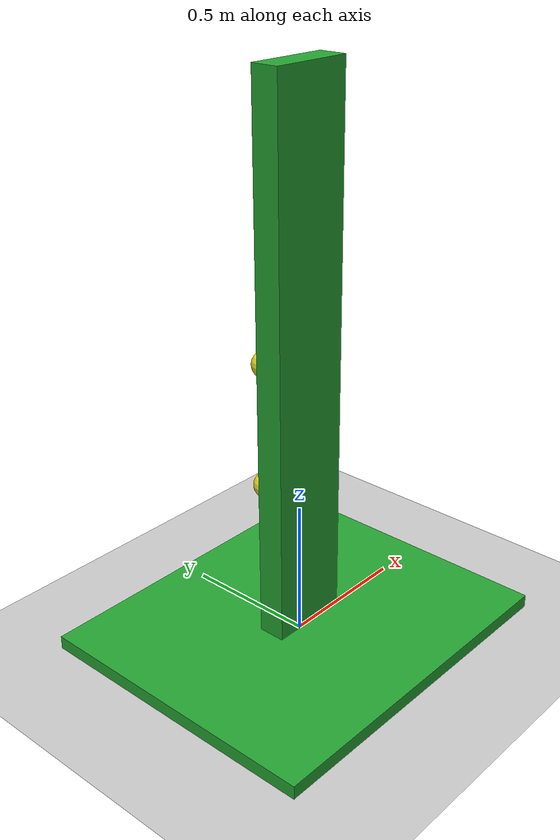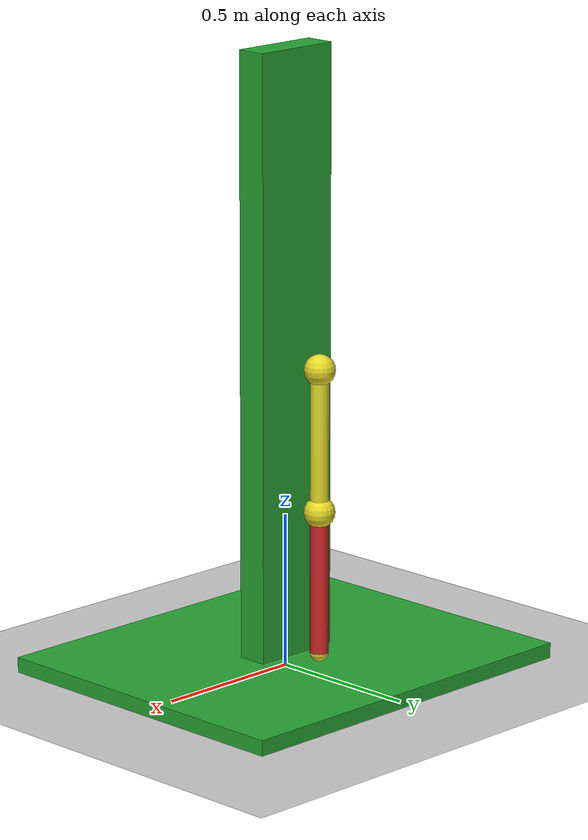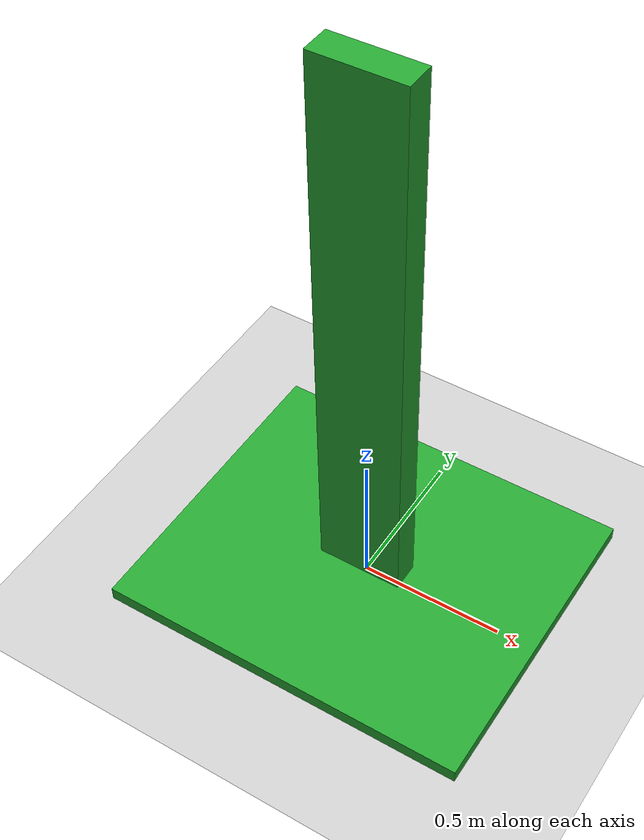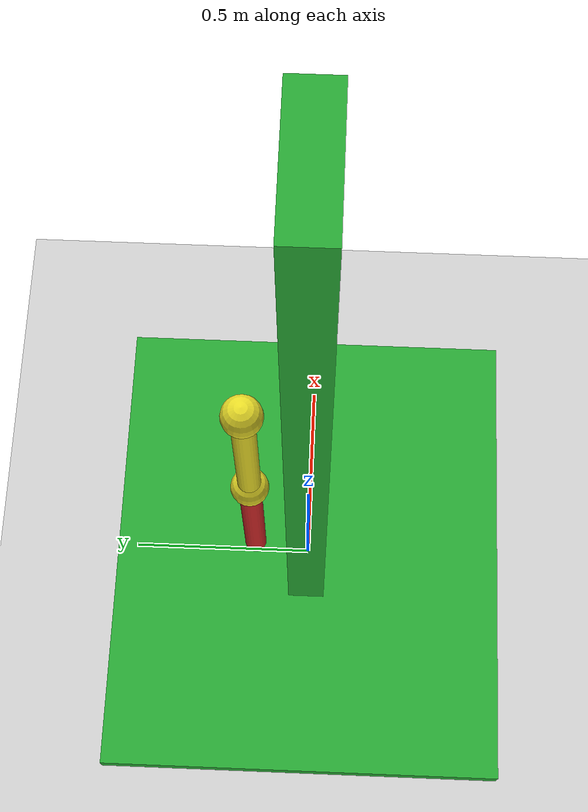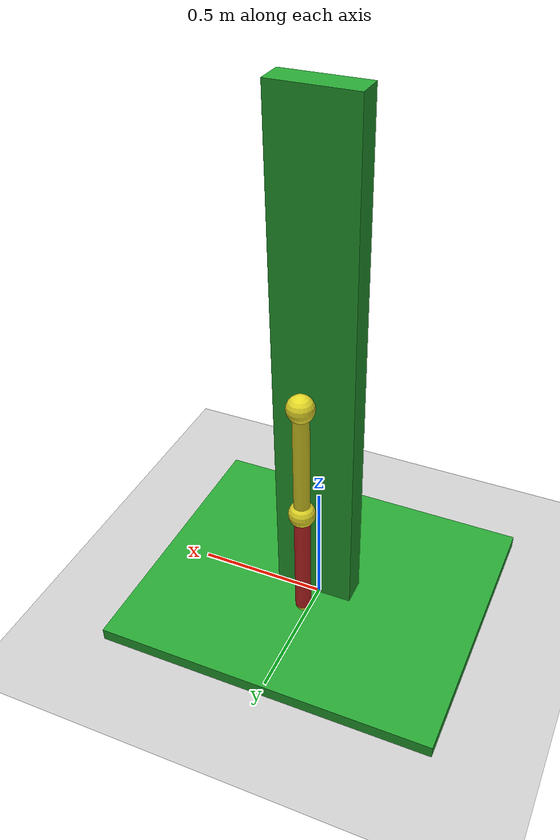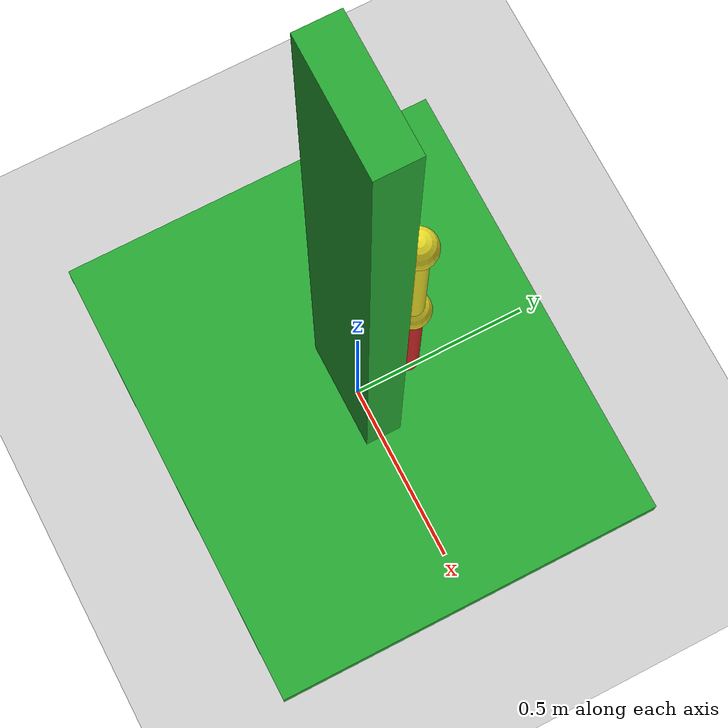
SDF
<?xml version="1.0" ?>
<sdf version="1.6">
  <world name="agile_leg_world">
    <!-- A global light source -->
    <include>
      <uri>model://sun</uri>
    </include>
    <!-- A ground plane -->
    <include>
      <uri>model://ground_plane</uri>
    </include>

    <model name="agile_leg">
      <include>
        <pose>0 0 0 0 0 0</pose>
        <uri>model://agile_leg</uri>
      </include>

      <joint name="ground_fixed_joint" type="fixed">
        <parent>ground_plane::ground_plane::link</parent>
        <child>agile_leg::agile_leg::base</child>
      </joint>

      <plugin name="agile_leg_plugin" filename="libagile_gazebo_leg_plugin.so">
        <config name="configures for GzAgileLegPlugin" >
          <leg_node_ipc_name>leg_node</leg_node_ipc_name>
          <cmd_ipc_name>cmds</cmd_ipc_name>

          <leg_type>FL</leg_type>
          <node_id>0x01</node_id>

          <!-- The linear coefficients -->
          <HAA_linear_scale>1</HAA_linear_scale>
          <HAA_linear_offset>16290</HAA_linear_offset>
          <HAA_pid_gains>0 0 0</HAA_pid_gains>

          <HFE_linear_scale>-1</HFE_linear_scale>
          <HFE_linear_offset>23079</HFE_linear_offset>
          <HFE_pid_gains>20 0 0</HFE_pid_gains>

          <KFE_linear_scale>1</KFE_linear_scale>
          <KFE_linear_offset>28734</KFE_linear_offset>
          <KFE_pid_gains>20 0 0</KFE_pid_gains>
        </config>
      </plugin>

    </model>

    <!-- Physics settings for simulation -->
    <gravity>0 0 -9.8</gravity>
    <physics type="ode">
      <max_step_size>0.001</max_step_size>
      <real_time_factor>1</real_time_factor>
      <real_time_update_rate>1000</real_time_update_rate>
      <ode>
        <solver>
          <type>quick</type>
          <iters>50</iters>
          <sor>1.4</sor>
        </solver>
        <constraints>
          <cfm>0</cfm>
          <erp>1</erp>
          <contact_max_correcting_vel>0</contact_max_correcting_vel>
          <contact_surface_layer>0</contact_surface_layer>
        </constraints>
      </ode>
    </physics>
  </world>
</sdf>

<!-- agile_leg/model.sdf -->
<sdf version='1.6'>
  <model name='agile_leg'>
    <link name='base'>
      <pose frame=''>0 0 0 0 0 0</pose>
      <gravity>1</gravity>
      <inertial>
        <pose frame=''>0 0 0 0 0 0</pose>
        <mass>1000</mass>
        <inertia>
          <ixx>334.167</ixx>
          <ixy>0</ixy>
          <ixz>0</ixz>
          <iyy>340.833</iyy>
          <iyz>0</iyz>
          <izz>8.33333</izz>
        </inertia>
      </inertial>
      <self_collide>0</self_collide>
      <enable_wind>0</enable_wind>
      <kinematic>0</kinematic>
      <visual name='rack_visual'>
        <pose frame=''>0 0 1 0 0 0</pose>
        <geometry>
          <box>
            <size>0.3 0.1 2</size>
          </box>
        </geometry>
        <material>
          <script>
            <name>Gazebo/Green</name>
          </script>
        </material>
        <transparency>0</transparency>
        <cast_shadows>1</cast_shadows>
      </visual>

      <visual name='base_visual'>
        <pose frame=''>0 0 0.025 0 0 0</pose>
        <geometry>
          <box>
            <size>1.3 1.1 0.05</size>
          </box>
        </geometry>
        <material>
          <script>
            <name>Gazebo/Green</name>
          </script>
        </material>
        <transparency>0</transparency>
        <cast_shadows>1</cast_shadows>
      </visual>

      <collision name='rack_collision'>
        <laser_retro>0</laser_retro>
        <max_contacts>10</max_contacts>
        <pose frame=''>0 0 1 0 0 0</pose>
        <geometry>
          <box>
            <size>0.3 0.1 2</size>
          </box>
        </geometry>
        <surface>
          <friction>
            <ode>
              <mu>0.9</mu>
              <mu2>0.45</mu2>
              <fdir1>0 0 0</fdir1>
              <slip1>0</slip1>
              <slip2>0</slip2>
            </ode>
            <torsional>
              <coefficient>1</coefficient>
              <patch_radius>0</patch_radius>
              <surface_radius>0</surface_radius>
              <use_patch_radius>1</use_patch_radius>
              <ode>
                <slip>0</slip>
              </ode>
            </torsional>
          </friction>
          <bounce>
            <restitution_coefficient>0</restitution_coefficient>
            <threshold>1e+06</threshold>
          </bounce>
          <contact>
            <collide_without_contact>0</collide_without_contact>
            <collide_without_contact_bitmask>1</collide_without_contact_bitmask>
            <collide_bitmask>1</collide_bitmask>
            <ode>
              <soft_cfm>0</soft_cfm>
              <soft_erp>0.2</soft_erp>
              <kp>1e+13</kp>
              <kd>1</kd>
              <max_vel>0.01</max_vel>
              <min_depth>0</min_depth>
            </ode>
            <bullet>
              <split_impulse>1</split_impulse>
              <split_impulse_penetration_threshold>-0.01</split_impulse_penetration_threshold>
              <soft_cfm>0</soft_cfm>
              <soft_erp>0.2</soft_erp>
              <kp>1e+13</kp>
              <kd>1</kd>
            </bullet>
          </contact>
        </surface>
      </collision>

      <collision name='base_collision'>
        <laser_retro>0</laser_retro>
        <max_contacts>10</max_contacts>
        <pose frame=''>0 0 0.025 0 -0 0</pose>
        <geometry>
          <box>
            <size>1.3 1.1 0.05</size>
          </box>
        </geometry>
        <surface>
          <friction>
            <ode>
              <mu>1</mu>
              <mu2>1</mu2>
              <fdir1>0 0 0</fdir1>
              <slip1>0</slip1>
              <slip2>0</slip2>
            </ode>
            <torsional>
              <coefficient>1</coefficient>
              <patch_radius>0</patch_radius>
              <surface_radius>0</surface_radius>
              <use_patch_radius>1</use_patch_radius>
              <ode>
                <slip>0</slip>
              </ode>
            </torsional>
          </friction>
          <bounce>
            <restitution_coefficient>0</restitution_coefficient>
            <threshold>1e+06</threshold>
          </bounce>
          <contact>
            <collide_without_contact>0</collide_without_contact>
            <collide_without_contact_bitmask>1</collide_without_contact_bitmask>
            <collide_bitmask>1</collide_bitmask>
            <ode>
              <soft_cfm>0</soft_cfm>
              <soft_erp>0.2</soft_erp>
              <kp>1e+13</kp>
              <kd>1</kd>
              <max_vel>0.01</max_vel>
              <min_depth>0</min_depth>
            </ode>
            <bullet>
              <split_impulse>1</split_impulse>
              <split_impulse_penetration_threshold>-0.01</split_impulse_penetration_threshold>
              <soft_cfm>0</soft_cfm>
              <soft_erp>0.2</soft_erp>
              <kp>1e+13</kp>
              <kd>1</kd>
            </bullet>
          </contact>
        </surface>
      </collision>
    </link>

    <link name='leg_base'>
      <pose frame=''>-0 0.15 1 0 0 0</pose>
      <inertial>
        <pose frame=''>0 0 0 0 0 0</pose>
        <mass>0.1</mass>
        <inertia>
          <ixx>0.0001</ixx>
          <ixy>0</ixy>
          <ixz>0</ixz>
          <iyy>0.0001</iyy>
          <iyz>0</iyz>
          <izz>0.0001</izz>
        </inertia>
      </inertial>
      <velocity_decay>
        <linear>0</linear>
        <angular>0</angular>
      </velocity_decay>
      <self_collide>0</self_collide>
      <kinematic>0</kinematic>
      <gravity>1</gravity>
      <enable_wind>0</enable_wind>
      <visual name='leg_base_visual'>
        <pose frame=''>0 0 0 0 -0 0</pose>
        <geometry>
          <sphere>
            <radius>0.05</radius>
          </sphere>
        </geometry>
        <material>
          <script>
            <name>Gazebo/Yellow</name>
          </script>
        </material>
        <transparency>0</transparency>
        <cast_shadows>1</cast_shadows>
      </visual>

      <collision name='leg_base_collision'>
        <laser_retro>0</laser_retro>
        <max_contacts>10</max_contacts>
        <pose frame=''>0 0 0 0 0 0</pose>
        <geometry>
          <sphere>
            <radius>0.05</radius>
          </sphere>
        </geometry>
        <surface>
          <friction>
            <ode>
              <mu>0.9</mu>
              <mu2>0.45</mu2>
              <fdir1>0 0 0</fdir1>
              <slip1>0</slip1>
              <slip2>0</slip2>
            </ode>
            <torsional>
              <coefficient>1</coefficient>
              <patch_radius>0</patch_radius>
              <surface_radius>0</surface_radius>
              <use_patch_radius>1</use_patch_radius>
              <ode>
                <slip>0</slip>
              </ode>
            </torsional>
          </friction>
          <bounce>
            <restitution_coefficient>0</restitution_coefficient>
            <threshold>1e+06</threshold>
          </bounce>
          <contact>
            <collide_without_contact>0</collide_without_contact>
            <collide_without_contact_bitmask>1</collide_without_contact_bitmask>
            <collide_bitmask>1</collide_bitmask>
            <ode>
              <soft_cfm>0</soft_cfm>
              <soft_erp>0.2</soft_erp>
              <kp>1e+13</kp>
              <kd>1</kd>
              <max_vel>0.01</max_vel>
              <min_depth>0</min_depth>
            </ode>
            <bullet>
              <split_impulse>1</split_impulse>
              <split_impulse_penetration_threshold>-0.01</split_impulse_penetration_threshold>
              <soft_cfm>0</soft_cfm>
              <soft_erp>0.2</soft_erp>
              <kp>1e+13</kp>
              <kd>1</kd>
            </bullet>
          </contact>
        </surface>
      </collision>
    </link>

    <link name='shank'>
      <pose frame=''>-0 0.15 0.31 0 0 0</pose>
      <inertial>
        <pose frame=''>0 0 0 0 0 0</pose>
        <mass>0.45</mass>
        <inertia>
          <ixx>0.000162</ixx>
          <ixy>0</ixy>
          <ixz>0</ixz>
          <iyy>0.000162</iyy>
          <iyz>0</iyz>
          <izz>0.000162</izz>
        </inertia>
      </inertial>
      <velocity_decay>
        <linear>0</linear>
        <angular>0</angular>
      </velocity_decay>
      <self_collide>0</self_collide>
      <kinematic>0</kinematic>
      <gravity>1</gravity>
      <enable_wind>0</enable_wind>
      <sensor name='contact' type='contact'>
        <contact>
          <collision>fl_foot_collision</collision>
          <topic>fl_td</topic>
        </contact>
      </sensor>
      <visual name='shank_visual'>
        <pose frame=''>0 0 0 0 0 0</pose>
        <geometry>
          <cylinder>
            <radius>0.03</radius>
            <length>0.46</length>
          </cylinder>
        </geometry>
        <material>
          <script>
            <name>Gazebo/Red</name>
          </script>
        </material>
        <transparency>0</transparency>
        <cast_shadows>1</cast_shadows>
      </visual>

      <visual name='foot_visual'>
        <pose frame=''>0 0 -0.23 0 0 0</pose>
        <geometry>
          <sphere>
            <radius>0.03</radius>
          </sphere>
        </geometry>
        <material>
          <script>
            <name>Gazebo/Yellow</name>
          </script>
        </material>
        <transparency>0</transparency>
        <cast_shadows>1</cast_shadows>
      </visual>

      <collision name='foot_collision'>
        <laser_retro>0</laser_retro>
        <max_contacts>10</max_contacts>
        <pose frame=''>0 0 -0.23 0 0 0</pose>
        <geometry>
          <sphere>
            <radius>0.03</radius>
          </sphere>
        </geometry>
        <surface>
          <friction>
            <ode>
              <mu>0.9</mu>
              <mu2>0.45</mu2>
              <fdir1>0 0 0</fdir1>
              <slip1>0</slip1>
              <slip2>0</slip2>
            </ode>
            <torsional>
              <coefficient>1</coefficient>
              <patch_radius>0</patch_radius>
              <surface_radius>0</surface_radius>
              <use_patch_radius>1</use_patch_radius>
              <ode>
                <slip>0</slip>
              </ode>
            </torsional>
          </friction>
          <bounce>
            <restitution_coefficient>0</restitution_coefficient>
            <threshold>1e+06</threshold>
          </bounce>
          <contact>
            <collide_without_contact>0</collide_without_contact>
            <collide_without_contact_bitmask>1</collide_without_contact_bitmask>
            <collide_bitmask>1</collide_bitmask>
            <ode>
              <soft_cfm>0</soft_cfm>
              <soft_erp>0.2</soft_erp>
              <kp>1e+13</kp>
              <kd>1</kd>
              <max_vel>0.01</max_vel>
              <min_depth>0</min_depth>
            </ode>
            <bullet>
              <split_impulse>1</split_impulse>
              <split_impulse_penetration_threshold>-0.01</split_impulse_penetration_threshold>
              <soft_cfm>0</soft_cfm>
              <soft_erp>0.2</soft_erp>
              <kp>1e+13</kp>
              <kd>1</kd>
            </bullet>
          </contact>
        </surface>
      </collision>

      <collision name='shine_collision'>
        <laser_retro>0</laser_retro>
        <max_contacts>10</max_contacts>
        <pose frame=''>0 0 0 0 0 0</pose>
        <geometry>
          <cylinder>
            <radius>0.03</radius>
            <length>0.46</length>
          </cylinder>
        </geometry>
        <surface>
          <friction>
            <ode>
              <mu>0.9</mu>
              <mu2>0.45</mu2>
              <fdir1>0 0 0</fdir1>
              <slip1>0</slip1>
              <slip2>0</slip2>
            </ode>
            <torsional>
              <coefficient>1</coefficient>
              <patch_radius>0</patch_radius>
              <surface_radius>0</surface_radius>
              <use_patch_radius>1</use_patch_radius>
              <ode>
                <slip>0</slip>
              </ode>
            </torsional>
          </friction>
          <bounce>
            <restitution_coefficient>0</restitution_coefficient>
            <threshold>1e+06</threshold>
          </bounce>
          <contact>
            <collide_without_contact>0</collide_without_contact>
            <collide_without_contact_bitmask>1</collide_without_contact_bitmask>
            <collide_bitmask>1</collide_bitmask>
            <ode>
              <soft_cfm>0</soft_cfm>
              <soft_erp>0.2</soft_erp>
              <kp>1e+13</kp>
              <kd>1</kd>
              <max_vel>0.01</max_vel>
              <min_depth>0</min_depth>
            </ode>
            <bullet>
              <split_impulse>1</split_impulse>
              <split_impulse_penetration_threshold>-0.01</split_impulse_penetration_threshold>
              <soft_cfm>0</soft_cfm>
              <soft_erp>0.2</soft_erp>
              <kp>1e+13</kp>
              <kd>1</kd>
            </bullet>
          </contact>
        </surface>
      </collision>
    </link>

    <link name='thigh'>
      <pose frame=''>-0 0.15 0.77 0 0 0</pose>
      <gravity>1</gravity>
      <inertial>
        <pose frame=''>0 0 0 0 0 0</pose>
        <mass>0.45</mass>
        <inertia>
          <ixx>0.00045</ixx>
          <ixy>0</ixy>
          <ixz>0</ixz>
          <iyy>0.00045</iyy>
          <iyz>0</iyz>
          <izz>0.00045</izz>
        </inertia>
      </inertial>
      <self_collide>0</self_collide>
      <enable_wind>0</enable_wind>
      <kinematic>0</kinematic>
      <visual name='thigh_visual'>
        <pose frame=''>0 0 0 0 -0 0</pose>
        <geometry>
          <cylinder>
            <radius>0.03</radius>
            <length>0.46</length>
          </cylinder>
        </geometry>
        <material>
          <script>
            <name>Gazebo/Yellow</name>
          </script>
        </material>
        <transparency>0</transparency>
        <cast_shadows>1</cast_shadows>
      </visual>

      <visual name='thigh_knee_visual'>
        <pose frame=''>0 0 -0.23 0 0 0</pose>
        <geometry>
          <sphere>
            <radius>0.05</radius>
          </sphere>
        </geometry>
        <material>
          <script>
            <name>Gazebo/Yellow</name>
          </script>
        </material>
        <transparency>0</transparency>
        <cast_shadows>1</cast_shadows>
      </visual>

      <collision name='thigh_knee_collision'>
        <laser_retro>0</laser_retro>
        <max_contacts>10</max_contacts>
        <pose frame=''>0 0 -0.23 0 0 0</pose>
        <geometry>
          <sphere>
            <radius>0.05</radius>
          </sphere>
        </geometry>
        <surface>
          <friction>
            <ode>
              <mu>1</mu>
              <mu2>1</mu2>
              <fdir1>0 0 0</fdir1>
              <slip1>0</slip1>
              <slip2>0</slip2>
            </ode>
            <torsional>
              <coefficient>1</coefficient>
              <patch_radius>0</patch_radius>
              <surface_radius>0</surface_radius>
              <use_patch_radius>1</use_patch_radius>
              <ode>
                <slip>0</slip>
              </ode>
            </torsional>
          </friction>
          <bounce>
            <restitution_coefficient>0</restitution_coefficient>
            <threshold>1e+06</threshold>
          </bounce>
          <contact>
            <collide_without_contact>0</collide_without_contact>
            <collide_without_contact_bitmask>1</collide_without_contact_bitmask>
            <collide_bitmask>1</collide_bitmask>
            <ode>
              <soft_cfm>0</soft_cfm>
              <soft_erp>0.2</soft_erp>
              <kp>1e+13</kp>
              <kd>1</kd>
              <max_vel>0.01</max_vel>
              <min_depth>0</min_depth>
            </ode>
            <bullet>
              <split_impulse>1</split_impulse>
              <split_impulse_penetration_threshold>-0.01</split_impulse_penetration_threshold>
              <soft_cfm>0</soft_cfm>
              <soft_erp>0.2</soft_erp>
              <kp>1e+13</kp>
              <kd>1</kd>
            </bullet>
          </contact>
        </surface>
      </collision>

      <collision name='thigh_collision'>
        <laser_retro>0</laser_retro>
        <max_contacts>10</max_contacts>
        <pose frame=''>0 0 0 0 0 0</pose>
        <geometry>
          <cylinder>
            <radius>0.03</radius>
            <length>0.46</length>
          </cylinder>
        </geometry>
        <surface>
          <friction>
            <ode>
              <mu>0.9</mu>
              <mu2>0.45</mu2>
              <fdir1>0 0 0</fdir1>
              <slip1>0</slip1>
              <slip2>0</slip2>
            </ode>
            <torsional>
              <coefficient>1</coefficient>
              <patch_radius>0</patch_radius>
              <surface_radius>0</surface_radius>
              <use_patch_radius>1</use_patch_radius>
              <ode>
                <slip>0</slip>
              </ode>
            </torsional>
          </friction>
          <bounce>
            <restitution_coefficient>0</restitution_coefficient>
            <threshold>1e+06</threshold>
          </bounce>
          <contact>
            <collide_without_contact>0</collide_without_contact>
            <collide_without_contact_bitmask>1</collide_without_contact_bitmask>
            <collide_bitmask>1</collide_bitmask>
            <ode>
              <soft_cfm>0</soft_cfm>
              <soft_erp>0.2</soft_erp>
              <kp>1e+13</kp>
              <kd>1</kd>
              <max_vel>0.01</max_vel>
              <min_depth>0</min_depth>
            </ode>
            <bullet>
              <split_impulse>1</split_impulse>
              <split_impulse_penetration_threshold>-0.01</split_impulse_penetration_threshold>
              <soft_cfm>0</soft_cfm>
              <soft_erp>0.2</soft_erp>
              <kp>1e+13</kp>
              <kd>1</kd>
            </bullet>
          </contact>
        </surface>
      </collision>
    </link>

    <joint name='hfe' type='revolute'>
      <parent>leg_base</parent>
      <child>thigh</child>
      <pose frame=''>0 0 0.23 0 0 0</pose>
      <axis>
        <xyz>0 1 0</xyz>
        <use_parent_model_frame>1</use_parent_model_frame>
        <limit>
          <lower>-0.262827</lower>
          <upper>0.8726</upper>
          <effort>30000</effort>
          <velocity>1</velocity>
        </limit>
        <dynamics>
          <spring_reference>0</spring_reference>
          <spring_stiffness>0</spring_stiffness>
          <damping>0.01</damping>
          <friction>0</friction>
        </dynamics>
      </axis>
      <physics>
        <ode>
          <limit>
            <cfm>0</cfm>
            <erp>0.2</erp>
          </limit>
          <suspension>
            <cfm>0</cfm>
            <erp>0.2</erp>
          </suspension>
        </ode>
      </physics>
    </joint>

    <joint name='kfe' type='revolute'>
      <parent>thigh</parent>
      <child>shank</child>
      <pose frame=''>0 0 0.23 0 0 0</pose>
      <axis>
        <xyz>0 1 0</xyz>
        <use_parent_model_frame>1</use_parent_model_frame>
        <limit>
          <lower>-1.72775</lower>
          <upper>-0.595113</upper>
          <effort>30000</effort>
          <velocity>1</velocity>
        </limit>
        <dynamics>
          <spring_reference>0</spring_reference>
          <spring_stiffness>0</spring_stiffness>
          <damping>0.01</damping>
          <friction>0</friction>
        </dynamics>
      </axis>
      <physics>
        <ode>
          <limit>
            <cfm>0</cfm>
            <erp>0.2</erp>
          </limit>
          <suspension>
            <cfm>0</cfm>
            <erp>0.2</erp>
          </suspension>
        </ode>
      </physics>
    </joint>

    <joint name='haa' type='fixed'>
      <parent>base</parent>
      <child>leg_base</child>
      <pose frame=''>0 0 0 0 -0 0</pose>
      <physics>
        <ode>
          <limit>
            <cfm>0</cfm>
            <erp>0.2</erp>
          </limit>
          <suspension>
            <cfm>0</cfm>
            <erp>0.2</erp>
          </suspension>
        </ode>
      </physics>
    </joint>

    <static>0</static>
    <allow_auto_disable>1</allow_auto_disable>
  </model>
</sdf>
